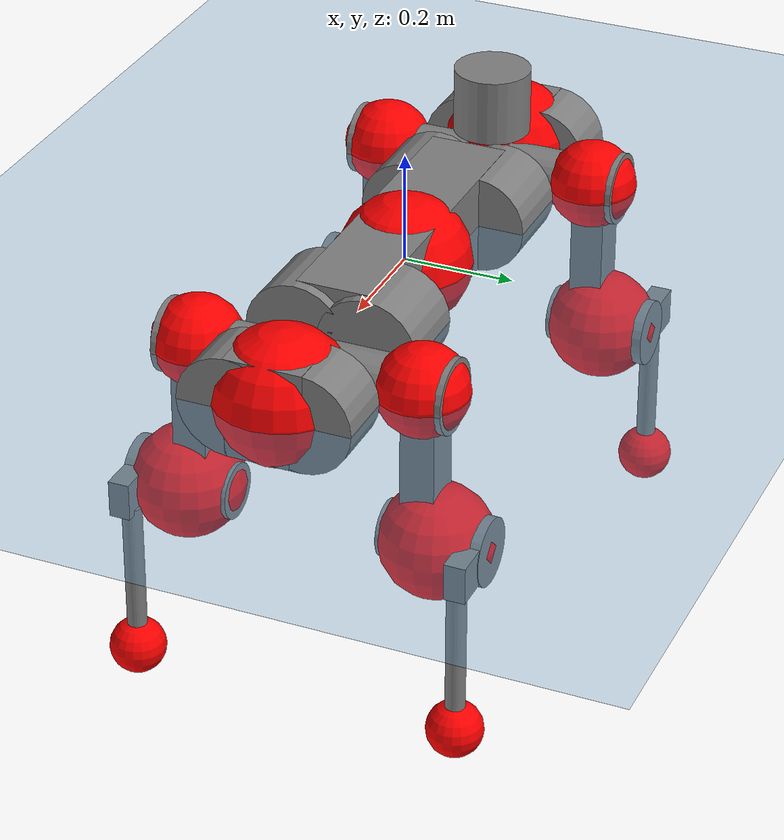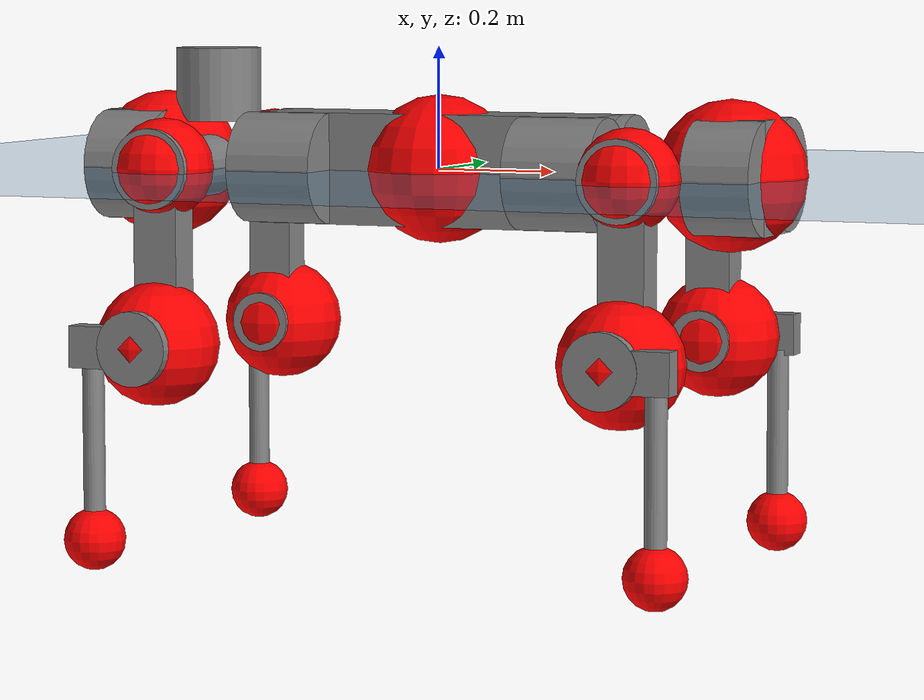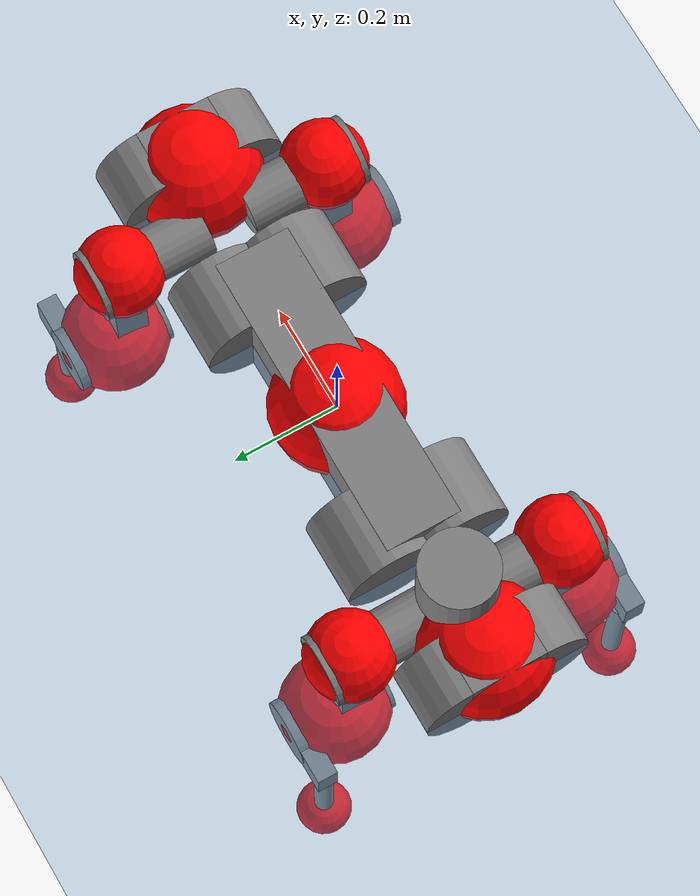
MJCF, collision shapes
<mujoco model="anymal_c">
  <compiler angle="radian" assetdir="assets" balanceinertia="true" inertiafromgeom="false"/>

  <option timestep="0.005" density="1.2" viscosity="2e-05"/>

  <size nkey="1"/>

  <visual>
    <quality shadowsize="8192"/>
    <map shadowclip="0.5"/>
  </visual>

  <default>
    <default class="/">
      <material specular="0" shininess="0.25"/>
      <geom contype="0" conaffinity="0" group="1" solref="-1000 -80"/>
      <site size="0.01 0.005 0.005" group="5"/>
      <general forcelimited="true" forcerange="-80 80" biastype="affine" gainprm="80" biasprm="0 -80 -2"/>
      <default class="anymal_c">
        <joint armature="0.01" damping="0.01" frictionloss="0.1"/>
        <default class="visual">
          <geom type="mesh" group="2"/>
          <default class="visual_zflip"/>
        </default>
        <default class="collision">
          <geom type="cylinder" group="3"/>
          <default class="foot">
            <geom size="0.03 0 0" type="sphere" condim="6" priority="1" friction="0.8 0.02 0.01" solimp="0.015 1 0.03"/>
          </default>
        </default>
      </default>
      <default class="reward_collision_sphere">
        <geom group="5" rgba="1 0 0 1"/>
      </default>
    </default>
  </default>

  <asset>
    <texture type="skybox" colorspace="auto" name="//unnamed_texture_0" builtin="gradient" rgb1="0.95 0.95 0.95" rgb2="0.95 0.95 0.95" width="100" height="600"/>
    <texture type="2d" colorspace="auto" name="texplane" builtin="checker" rgb1="0.345 0.575 0.748" rgb2="0.345 0.575 0.748" markrgb="1 1 1" width="512" height="512"/>
    <texture type="2d" colorspace="linear" name="base" file="base.png"/>
    <texture type="2d" colorspace="linear" name="top_shell" file="top_shell.png"/>
    <texture type="2d" colorspace="linear" name="bottom_shell" file="bottom_shell.png"/>
    <texture type="2d" colorspace="linear" name="remote" file="remote.png"/>
    <texture type="2d" colorspace="linear" name="hatch" file="hatch.png"/>
    <texture type="2d" colorspace="linear" name="handle" file="handle.png"/>
    <texture type="2d" colorspace="linear" name="face" file="face.png"/>
    <texture type="2d" colorspace="linear" name="battery" file="battery.png"/>
    <texture type="2d" colorspace="linear" name="lidar_cage" file="lidar_cage.png"/>
    <texture type="2d" colorspace="linear" name="depth_camera" file="depth_camera.png"/>
    <texture type="2d" colorspace="linear" name="wide_angle_camera" file="wide_angle_camera.png"/>
    <texture type="2d" colorspace="linear" name="lidar" file="lidar.png"/>
    <texture type="2d" colorspace="linear" name="drive" file="drive.png"/>
    <texture type="2d" colorspace="linear" name="hip_l" file="hip_l.png"/>
    <texture type="2d" colorspace="linear" name="shank_l" file="shank_l.png"/>
    <texture type="2d" colorspace="linear" name="foot" file="foot.png"/>
    <texture type="2d" colorspace="linear" name="thigh" file="thigh.png"/>
    <texture type="2d" colorspace="linear" name="shank_r" file="shank_r.png"/>
    <texture type="2d" colorspace="linear" name="hip_r" file="hip_r.png"/>
    <material name="MatPlane" class="/" texture="texplane" texuniform="true" texrepeat="2 2" specular="0.9" shininess="0.5"/>
    <material name="black_plastic" class="/" rgba="0.007 0.007 0.007 1"/>
    <material name="green" class="/" rgba="0.052 0.178 0.033 1"/>
    <material name="red" class="/" rgba="0.178 0.006 0.005 1"/>
    <material name="yellow" class="/" rgba="0.178 0.119 0.006 1"/>
    <material name="lwl" class="/" rgba="0.8 0.8 0.8 1"/>
    <material name="base" class="/" texture="base"/>
    <material name="top_shell" class="/" texture="top_shell"/>
    <material name="bottom_shell" class="/" texture="bottom_shell"/>
    <material name="hip_l" class="/" texture="hip_l"/>
    <material name="thigh" class="/" texture="thigh"/>
    <material name="shank_l" class="/" texture="shank_l"/>
    <material name="foot" class="/" texture="foot"/>
    <material name="hip_r" class="/" texture="hip_r"/>
    <material name="shank" class="/" texture="shank_r"/>
    <material name="hatch" class="/" texture="hatch"/>
    <material name="remote" class="/" texture="remote"/>
    <material name="handle" class="/" texture="handle"/>
    <material name="face" class="/" texture="face"/>
    <material name="depth_camera" class="/" texture="depth_camera"/>
    <material name="wide_angle_camera" class="/" texture="wide_angle_camera"/>
    <material name="battery" class="/" texture="battery"/>
    <material name="lidar_cage" class="/" texture="lidar_cage"/>
    <material name="lidar" class="/" texture="lidar"/>
    <material name="drive" class="/" texture="drive"/>
    <mesh name="base_0" class="/" file="base_0.obj"/>
    <mesh name="base_1" class="/" file="base_1.obj"/>
    <mesh name="base_2" class="/" file="base_2.obj"/>
    <mesh name="base_3" class="/" file="base_3.obj"/>
    <mesh name="base_4" class="/" file="base_4.obj"/>
    <mesh name="base_5" class="/" file="base_5.obj"/>
    <mesh name="top_shell" class="/" file="top_shell.obj"/>
    <mesh name="bottom_shell" class="/" file="bottom_shell.obj"/>
    <mesh name="remote" class="/" file="remote.obj"/>
    <mesh name="handle" class="/" file="handle.obj"/>
    <mesh name="face" class="/" file="face.obj"/>
    <mesh name="wide_angle_camera" class="/" file="wide_angle_camera.obj"/>
    <mesh name="depth_camera" class="/" file="depth_camera.obj"/>
    <mesh name="battery" class="/" file="battery.obj"/>
    <mesh name="lidar_cage" class="/" file="lidar_cage.obj"/>
    <mesh name="lidar" class="/" file="lidar.obj"/>
    <mesh name="drive" class="/" file="drive.obj"/>
    <mesh name="hip_l" class="/" file="hip_l.obj"/>
    <mesh name="thigh" class="/" file="thigh.obj"/>
    <mesh name="shank_l" class="/" file="shank_l.obj"/>
    <mesh name="foot" class="/" file="foot.obj"/>
    <mesh name="hip_r" class="/" file="hip_r.obj"/>
    <mesh name="hatch" class="/" file="hatch.obj"/>
    <mesh name="shank_r" class="/" file="shank_r.obj"/>
  </asset>

  <worldbody>
    <geom name="floor" class="/" size="100 100 0.125" type="plane" group="0" material="MatPlane"/>
    <light name="toplight_shadow" class="/" pos="0 0 5" dir="0.0990148 0.0990148 -0.990148" type="directional" ambient="0.04 0.04 0.04" diffuse="0.55 0.55 0.55" specular="0.12 0.12 0.12"/>
    <light name="toplight_fill" class="/" pos="0 0 5" dir="0.0990148 0.0990148 -0.990148" type="directional" castshadow="false" ambient="0.04 0.04 0.04" diffuse="0.3 0.3 0.3" specular="0.08 0.08 0.08"/>
    <body name="trunk" childclass="anymal_c" pos="0.00236787 -0.000490077 0.000652052" quat="0.999999 -0.000916827 -0.000466181 -2.03046e-05">
      <inertial pos="0.000295588 -0.000826696 0.0498532" quat="0.500457 0.499245 0.500207 0.50009" mass="19.0243" diaginertia="1.05073 0.430836 0.209071"/>
      <joint name="//unnamed_joint_0" type="free" armature="0" damping="0" frictionloss="0"/>
      <geom name="//unnamed_geom_1" class="visual" material="green" mesh="base_0"/>
      <geom name="//unnamed_geom_2" class="visual" material="yellow" mesh="base_1"/>
      <geom name="//unnamed_geom_3" class="visual" material="red" mesh="base_2"/>
      <geom name="//unnamed_geom_4" class="visual" material="black_plastic" mesh="base_3"/>
      <geom name="//unnamed_geom_5" class="visual" material="lwl" mesh="base_4"/>
      <geom name="//unnamed_geom_6" class="visual" material="base" mesh="base_5"/>
      <geom name="trunk_1" class="collision" size="0.293168 0.0707648 0.0909833" type="box"/>
      <geom name="trunk_2" class="collision" size="0.0909833 0.0732921" pos="0.240593 0.0651126 0" quat="0.707107 0 0.707107 0"/>
      <geom name="trunk_3" class="collision" size="0.0909833 0.0732921" pos="-0.240593 0.0651126 0" quat="0.707107 0 0.707107 0"/>
      <geom name="trunk_4" class="collision" size="0.0909833 0.0732921" pos="0.240593 -0.0651126 0" quat="0.707107 0 0.707107 0"/>
      <geom name="trunk_5" class="collision" size="0.0909833 0.0732921" pos="-0.240593 -0.0651126 0" quat="0.707107 0 0.707107 0"/>
      <geom name="//unnamed_geom_12" class="visual" material="top_shell" mesh="top_shell"/>
      <geom name="//unnamed_geom_13" class="visual" material="bottom_shell" mesh="bottom_shell"/>
      <geom name="//unnamed_geom_14" class="visual" material="remote" mesh="remote"/>
      <geom name="//unnamed_geom_15" class="visual" material="handle" mesh="handle"/>
      <geom name="//unnamed_geom_16" class="visual" pos="0.458509 0 0" quat="1 0 0 0" material="face" mesh="face"/>
      <geom name="trunk_6" class="collision" size="0.0556009 0.0707648 0.0909833" pos="0.519349 0 0" type="box"/>
      <geom name="//unnamed_geom_18" class="collision" size="0.0909833 0.0556009" pos="0.519349 0.0651126 0" quat="0.707107 0 0.707107 0"/>
      <geom name="//unnamed_geom_19" class="collision" size="0.0909833 0.0556009" pos="0.519349 -0.0651126 0" quat="0.707107 0 0.707107 0"/>
      <geom name="//unnamed_geom_20" class="visual" pos="0.510661 0 -0.0282613" quat="0.965926 0 0.258819 0" material="depth_camera" mesh="depth_camera"/>
      <geom name="//unnamed_geom_21" class="visual" pos="0.567468 0 0.0149164" material="wide_angle_camera" mesh="wide_angle_camera"/>
      <geom name="//unnamed_geom_22" class="visual_zflip" pos="-0.458509 0 0" quat="0 0 0 1" material="face" mesh="face"/>
      <geom name="trunk_7" class="collision" size="0.0556009 0.0707648 0.0909833" pos="-0.519349 0 0" quat="0 0 0 1" type="box"/>
      <geom name="//unnamed_geom_24" class="collision" size="0.0909833 0.0556009" pos="-0.519349 -0.0651126 0" quat="0 -0.707107 0 0.707107"/>
      <geom name="//unnamed_geom_25" class="collision" size="0.0909833 0.0556009" pos="-0.519349 0.0651126 0" quat="0 -0.707107 0 0.707107"/>
      <geom name="//unnamed_geom_26" class="visual" pos="-0.510661 0 -0.0282613" quat="0 -0.258819 0 0.965926" material="depth_camera" mesh="depth_camera"/>
      <geom name="//unnamed_geom_27" class="visual_zflip" pos="-0.567468 0 0.0149164" quat="0 0 0 1" material="wide_angle_camera" mesh="wide_angle_camera"/>
      <geom name="//unnamed_geom_28" class="visual" material="battery" mesh="battery"/>
      <geom name="//unnamed_geom_29" class="visual" pos="0 0.0688076 0.0297801" quat="0.683013 -0.183013 0.183013 0.683013" material="depth_camera" mesh="depth_camera"/>
      <geom name="//unnamed_geom_30" class="visual" pos="0 -0.0688076 0.0297801" quat="0.683013 0.183013 0.183013 -0.683013" material="depth_camera" mesh="depth_camera"/>
      <geom name="//unnamed_geom_31" class="visual" pos="-0.402648 0 0.0732369" quat="1 0 0 0" material="lidar_cage" mesh="lidar_cage"/>
      <geom name="trunk_8" class="collision" size="0.0707648 0.0606555" pos="-0.402648 0 0.133022"/>
      <geom name="//unnamed_geom_33" class="visual" pos="-0.402648 -6.91434e-05 0.141691" quat="0.707107 0 0 -0.707107" material="lidar" mesh="lidar"/>
      <geom name="//unnamed_geom_34" class="visual" pos="0.331742 0.0967623 -1.14264e-09" quat="0.258819 0.965926 0 0" material="drive" mesh="drive"/>
      <geom name="//unnamed_geom_35" class="visual" pos="0.331742 -0.0967623 1.14264e-09" quat="0.258819 -0.965926 0 0" material="drive" mesh="drive"/>
      <geom name="//unnamed_geom_36" class="visual" pos="-0.331742 0.0967623 1.14264e-09" quat="0 0 0.965926 -0.258819" material="drive" mesh="drive"/>
      <geom name="//unnamed_geom_37" class="visual" pos="-0.331742 -0.0967623 -1.14264e-09" quat="0 0 -0.965926 -0.258819" material="drive" mesh="drive"/>
      <geom name="//unnamed_geom_38" class="visual" pos="0.128316 0 0.0727387" quat="1 0 0 0" material="hatch" mesh="hatch"/>
      <geom name="//unnamed_geom_39" class="reward_collision_sphere" size="0.121311"/>
      <geom name="//unnamed_geom_40" class="reward_collision_sphere" size="0.121311" pos="0.497779 0 0"/>
      <geom name="//unnamed_geom_41" class="reward_collision_sphere" size="0.121311" pos="-0.497779 0 0"/>
      <site name="imu" pos="0.272512 0.00644721 0.055741" size="0.0101093"/>
      <camera name="track" pos="0 -1.86036 0" quat="0.707107 0.707107 0 0" mode="trackcom"/>
      <camera name="ego_camera" pos="0.497779 0 -0.0398568" quat="-0.5 -0.5 0.5 0.5"/>
      <body name="LF_HIP" pos="0.332077 0.0976399 -0.000112597" quat="0.258636 0.965975 0.000210034 -0.000339623">
        <inertial pos="0.0620488 -0.0147156 -0.00840457" quat="-0.127997 0.70897 -0.137758 0.679707" mass="2.87718" diaginertia="0.00992376 0.00338476 0.00322597"/>
        <joint name="LF_HAA" pos="0 0 0" axis="0.9999 -0.013981 -0.00218532" range="-0.673501 0.482328" armature="0.00998339" damping="0.00743154" frictionloss="0.101956"/>
        <geom name="//unnamed_geom_42" class="visual" pos="0 -6.72166e-05 1.10403e-05" quat="0.258819 -0.965926 0 0" material="hip_l" mesh="hip_l"/>
        <geom name="//unnamed_geom_43" class="visual" pos="0.0662599 -0.0779942 -0.0455199" quat="0.183013 -0.683013 0.683013 0.183013" material="drive" mesh="drive"/>
        <geom name="//unnamed_geom_44" class="collision" size="0.0505463 0.0707648" pos="0.0662599 -0.0111248 -0.00688028" quat="-0.353553 -0.612372 0.612372 -0.353553"/>
        <body name="LF_THIGH" pos="0.0661268 -0.0672153 -0.0423308" quat="0.182467 -0.683271 0.682787 0.183435">
          <inertial pos="0.0351802 -0.00018254 -0.246793" quat="0.993164 -0.0051705 -0.0806762 0.0842046" mass="3.11932" diaginertia="0.049193 0.0207136 0.0041871"/>
          <joint name="LF_HFE" pos="0 0 0" axis="0.999994 0.00342877 0.000549264" range="-3.16006 3.13619" armature="0.0105194" damping="0.00716281" frictionloss="0.106312"/>
          <geom name="//unnamed_geom_45" class="visual" pos="0.00350159 5.51769e-06 0" quat="0.707107 0 0 -0.707107" material="thigh" mesh="thigh"/>
          <geom name="//unnamed_geom_46" class="collision" size="0.0657101 0.040437" pos="0.044247 0 0" quat="0.5 0.5 -0.5 -0.5"/>
          <geom name="//unnamed_geom_47" class="collision" size="0.0379097 0.0303278 0.142858" pos="0.0331852 0 -0.140808" quat="0.707107 0 0 -0.707107" type="box"/>
          <geom name="//unnamed_geom_48" class="visual" pos="0.110949 0 -0.28398" quat="1 0 0 0" material="drive" mesh="drive"/>
          <geom name="//unnamed_geom_49" class="collision" size="0.0505463 0.0707648" pos="0.0335171 0 -0.28398" quat="0.707107 0 0.707107 0"/>
          <geom name="//unnamed_geom_50" class="reward_collision_sphere" size="0.080874" pos="0.0276544 0 0"/>
          <body name="LF_SHANK" pos="0.111074 -0.00238747 -0.283766" quat="1 -0.000167806 9.23946e-05 4.6868e-06">
            <inertial pos="0.00461892 -0.0569048 -0.0798811" quat="0.992828 -0.116641 -0.0058041 -0.0255838" mass="0.607555" diaginertia="0.0173403 0.00665309 0.00111869"/>
            <joint name="LF_KFE" pos="0 0 0" axis="0.999989 -0.000454504 0.00460905" range="-3.18044 3.14595" armature="0.00991826" damping="0.000604077" frictionloss="0.0991268"/>
            <geom name="//unnamed_geom_51" class="visual" pos="0.00114179 0.0060881 0" quat="0.707107 0 0 -0.707107" material="shank_l" mesh="shank_l"/>
            <geom name="LF_kfe_act" class="collision" size="0.0606555 0.0202185" pos="0.0221235 0 0" quat="0.5 0.5 -0.5 -0.5"/>
            <geom name="//unnamed_geom_53" class="collision" size="0.0581272 0.0341187 0.0192076" pos="0.0221235 -0.0534844 0" quat="0.5 0.5 -0.5 -0.5" type="box"/>
            <geom name="//unnamed_geom_54" class="visual" pos="0.0144353 -0.0798474 -0.33676" quat="0.382683 0 0 -0.92388" material="foot" mesh="foot"/>
            <geom name="LF_calf" class="collision" size="0.0176912 0.142795" pos="0.0144356 -0.0818094 -0.16838" quat="0.707107 0 0 -0.707107"/>
            <geom name="LF_foot" class="foot" size="0.0335308" pos="0.0144356 -0.0818094 -0.314341" quat="0.707107 0 0 -0.707107"/>
            <geom name="//unnamed_geom_57" class="reward_collision_sphere" size="0.101093" pos="-0.0553087 0 0"/>
            <geom name="//unnamed_geom_58" class="reward_collision_sphere" size="0.0505463" pos="0.0144356 -0.0818094 -0.314341"/>
            <site name="LF_foot" class="foot" pos="0.0144356 -0.0818094 -0.314341" quat="0.707107 0 0 -0.707107" size="0.0101093"/>
          </body>
        </body>
      </body>
      <body name="RF_HIP" pos="0.332198 -0.0971195 -0.0018585" quat="0.25868 -0.965963 -0.000534346 -0.000483598">
        <inertial pos="0.0624306 0.0129726 -0.00855021" quat="0.130176 0.675535 0.129581 0.714084" mass="2.8501" diaginertia="0.00960052 0.00343498 0.00322412"/>
        <joint name="RF_HAA" pos="0 0 0" axis="0.999994 0.00348603 0.000820846" range="-0.513235 0.719069" armature="0.00965999" damping="0.0135494" frictionloss="0.0930365"/>
        <geom name="//unnamed_geom_59" class="visual" pos="0 6.7216e-05 1.10402e-05" quat="0.258819 0.965926 0 0" material="hip_r" mesh="hip_r"/>
        <geom name="//unnamed_geom_60" class="visual" pos="0.0662599 0.0779942 -0.0455199" quat="0.183013 0.683013 0.683013 -0.183013" material="drive" mesh="drive"/>
        <geom name="//unnamed_geom_61" class="collision" size="0.0505463 0.0707648" pos="0.0662599 0.0111248 -0.00688028" quat="-0.353553 0.612372 0.612372 0.353553"/>
        <body name="RF_THIGH" pos="0.0667064 0.064897 -0.042618" quat="0.183077 0.683091 0.682959 -0.182857">
          <inertial pos="0.0340024 -0.00116335 -0.245132" quat="0.992889 -0.00533711 -0.0788285 0.089048" mass="3.20267" diaginertia="0.0501194 0.0212332 0.0042171"/>
          <joint name="RF_HFE" pos="0 0 0" axis="1 8.50501e-06 0.000445524" range="-3.14682 3.16687" armature="0.0101047" damping="0.0124039" frictionloss="0.0971117"/>
          <geom name="//unnamed_geom_62" class="visual" pos="0.00350159 5.51769e-06 0" quat="0.707107 0 0 -0.707107" material="thigh" mesh="thigh"/>
          <geom name="//unnamed_geom_63" class="collision" size="0.0657101 0.040437" pos="0.044247 0 0" quat="0.5 0.5 0.5 0.5"/>
          <geom name="//unnamed_geom_64" class="collision" size="0.0379097 0.0303278 0.142858" pos="0.0331852 0 -0.140808" quat="0.707107 0 0 0.707107" type="box"/>
          <geom name="//unnamed_geom_65" class="visual" pos="0.110949 0 -0.28398" quat="1 0 0 0" material="drive" mesh="drive"/>
          <geom name="//unnamed_geom_66" class="collision" size="0.0505463 0.0707648" pos="0.0335171 0 -0.28398" quat="0.707107 0 0.707107 0"/>
          <geom name="//unnamed_geom_67" class="reward_collision_sphere" size="0.080874" pos="0.0276544 0 0"/>
          <body name="RF_SHANK" pos="0.111001 -0.00103068 -0.283013" quat="1 1.42154e-05 -1.4346e-05 -8.71791e-05">
            <inertial pos="0.0062217 0.0574371 -0.0805638" quat="0.992537 0.120091 0.00557119 0.0204084" mass="0.607023" diaginertia="0.0168818 0.0064388 0.00108898"/>
            <joint name="RF_KFE" pos="0 0 0" axis="0.999979 0.00225903 0.00600685" range="-3.12416 3.15008" armature="0.0106081" damping="0.0139168" frictionloss="0.105795"/>
            <geom name="//unnamed_geom_68" class="visual" pos="0.00114179 -0.00608809 0" quat="0.707107 0 0 0.707107" material="shank" mesh="shank_r"/>
            <geom name="RF_kfe_act" class="collision" size="0.0606555 0.0202185" pos="0.0221235 0 0" quat="0.5 0.5 0.5 0.5"/>
            <geom name="//unnamed_geom_70" class="collision" size="0.0581272 0.0341187 0.0192076" pos="0.0221235 0.0534844 0" quat="0.5 0.5 0.5 0.5" type="box"/>
            <geom name="//unnamed_geom_71" class="visual" pos="0.0144359 0.0798474 -0.33676" quat="0.382683 0 0 0.92388" material="foot" mesh="foot"/>
            <geom name="RF_calf" class="collision" size="0.0176912 0.142795" pos="0.0144356 0.0818094 -0.16838" quat="0.707107 0 0 0.707107"/>
            <geom name="RF_foot" class="foot" size="0.0289306" pos="0.0144356 0.0818094 -0.314341" quat="0.707107 0 0 0.707107"/>
            <geom name="//unnamed_geom_74" class="reward_collision_sphere" size="0.101093" pos="-0.0553087 0 0"/>
            <geom name="//unnamed_geom_75" class="reward_collision_sphere" size="0.0505463" pos="0.0144356 0.0818094 -0.314341"/>
            <site name="RF_foot" class="foot" pos="0.0144356 0.0818094 -0.314341" quat="0.707107 0 0 0.707107" size="0.0101093"/>
          </body>
        </body>
      </body>
      <body name="LH_HIP" pos="-0.331082 0.0971599 0.000178954" quat="3.38021e-05 0.000220661 0.965924 -0.258825">
        <inertial pos="0.0618373 0.0161395 -0.00928882" quat="0.129939 0.684618 0.135351 0.70434" mass="2.93149" diaginertia="0.00971205 0.0034141 0.00329143"/>
        <joint name="LH_HAA" pos="0 0 0" axis="0.999997 0.00236401 0.00102022" range="-0.497204 0.723708" armature="0.00942765" damping="0.0152005" frictionloss="0.110521"/>
        <geom name="//unnamed_geom_76" class="visual" pos="0 6.7216e-05 1.10402e-05" quat="-0.258819 -0.965926 0 0" material="hip_r" mesh="hip_r"/>
        <geom name="//unnamed_geom_77" class="visual" pos="0.0662599 0.0779942 -0.0455199" quat="0.183013 0.683013 0.683013 -0.183013" material="drive" mesh="drive"/>
        <geom name="//unnamed_geom_78" class="collision" size="0.0505463 0.0707648" pos="0.0662599 0.0111248 -0.00688028" quat="-0.353553 0.612372 0.612372 0.353553"/>
        <body name="LH_THIGH" pos="0.0654403 0.0655412 -0.040942" quat="0.183122 0.683027 0.683 -0.182898">
          <inertial pos="0.0341177 -3.98746e-05 -0.244699" quat="0.992372 -0.00281979 -0.0851791 0.0890727" mass="3.22354" diaginertia="0.0496549 0.0205777 0.00408491"/>
          <joint name="LH_HFE" pos="0 0 0" axis="1 0.000216509 -0.000790472" range="-3.1352 3.15054" armature="0.0105958" damping="0.00952202" frictionloss="0.101503"/>
          <geom name="//unnamed_geom_79" class="visual" pos="0.00350159 5.51769e-06 0" quat="0.707107 0 0 -0.707107" material="thigh" mesh="thigh"/>
          <geom name="//unnamed_geom_80" class="collision" size="0.0657101 0.040437" pos="0.044247 0 0" quat="0.5 0.5 -0.5 -0.5"/>
          <geom name="//unnamed_geom_81" class="collision" size="0.0379097 0.0303278 0.142858" pos="0.0331852 0 -0.140808" quat="0.707107 0 0 -0.707107" type="box"/>
          <geom name="//unnamed_geom_82" class="visual" pos="0.110949 0 -0.28398" quat="1 0 0 0" material="drive" mesh="drive"/>
          <geom name="//unnamed_geom_83" class="collision" size="0.0505463 0.0707648" pos="0.0335171 0 -0.28398" quat="0.707107 0 0.707107 0"/>
          <geom name="//unnamed_geom_84" class="reward_collision_sphere" size="0.080874" pos="0.0276544 0 0"/>
          <body name="LH_SHANK" pos="0.111129 -0.00074909 -0.28577" quat="1 0.000128268 -6.26858e-05 5.87485e-05">
            <inertial pos="0.00709765 0.059147 -0.0798327" quat="0.993067 0.114503 -0.000850869 0.0265846" mass="0.599693" diaginertia="0.0166708 0.00637939 0.00105375"/>
            <joint name="LH_KFE" pos="0 0 0" axis="0.999999 0.000332976 0.00142099" range="-3.14476 3.12529" armature="0.0100335" damping="0.00623082" frictionloss="0.112406"/>
            <geom name="//unnamed_geom_85" class="visual" pos="0.00114179 -0.00608809 0" quat="-0.707107 0 0 -0.707107" material="shank" mesh="shank_r"/>
            <geom name="LH_kfe_act" class="collision" size="0.0606555 0.0202185" pos="0.0221235 0 0" quat="0.5 0.5 -0.5 -0.5"/>
            <geom name="//unnamed_geom_87" class="collision" size="0.0581272 0.0341187 0.0192076" pos="0.0221235 0.0534844 0" quat="0.5 0.5 -0.5 -0.5" type="box"/>
            <geom name="//unnamed_geom_88" class="visual" pos="0.0144359 0.0798474 -0.33676" quat="-0.382683 0 0 -0.92388" material="foot" mesh="foot"/>
            <geom name="LH_calf" class="collision" size="0.0176912 0.142795" pos="0.0144356 0.0818094 -0.16838" quat="0.707107 0 0 -0.707107"/>
            <geom name="LH_foot" class="foot" size="0.0317277" pos="0.0144356 0.0818094 -0.314341" quat="0.707107 0 0 -0.707107"/>
            <geom name="//unnamed_geom_91" class="reward_collision_sphere" size="0.101093" pos="-0.0553087 0 0"/>
            <geom name="//unnamed_geom_92" class="reward_collision_sphere" size="0.0505463" pos="0.0144356 0.0818094 -0.314341"/>
            <site name="LH_foot" class="foot" pos="0.0144356 0.0818094 -0.314341" quat="0.707107 0 0 -0.707107" size="0.0101093"/>
          </body>
        </body>
      </body>
      <body name="RH_HIP" pos="-0.332658 -0.0968981 -0.000653166" quat="-0.000835036 -0.000689021 -0.966014 -0.258488">
        <inertial pos="0.0649393 -0.0134261 -0.0107523" quat="-0.125919 0.710689 -0.137523 0.678345" mass="2.88127" diaginertia="0.00976157 0.00343377 0.00321744"/>
        <joint name="RH_HAA" pos="0 0 0" axis="0.999917 0.00541326 -0.0116999" range="-0.743661 0.492544" armature="0.0104178" damping="0.00954229" frictionloss="0.0999245"/>
        <geom name="//unnamed_geom_93" class="visual" pos="0 -6.72166e-05 1.10403e-05" quat="-0.258819 0.965926 0 0" material="hip_l" mesh="hip_l"/>
        <geom name="//unnamed_geom_94" class="visual" pos="0.0662599 -0.0779942 -0.0455199" quat="-0.183013 0.683013 -0.683013 -0.183013" material="drive" mesh="drive"/>
        <geom name="//unnamed_geom_95" class="collision" size="0.0505463 0.0707648" pos="0.0662599 -0.0111248 -0.00688028" quat="0.353553 0.612372 -0.612372 0.353553"/>
        <body name="RH_THIGH" pos="0.0668494 -0.0678428 -0.0442088" quat="-0.183031 0.683021 -0.683045 -0.182844">
          <inertial pos="0.0338241 9.59798e-05 -0.244658" quat="0.993074 -0.00432304 -0.0805877 0.0853904" mass="3.10398" diaginertia="0.0500575 0.0208953 0.00411692"/>
          <joint name="RH_HFE" pos="0 0 0" axis="0.999999 -0.000818568 0.00128615" range="-3.14328 3.17909" armature="0.00984977" damping="0.00688564" frictionloss="0.0997495"/>
          <geom name="//unnamed_geom_96" class="visual" pos="0.00350159 5.51769e-06 0" quat="0.707107 0 0 -0.707107" material="thigh" mesh="thigh"/>
          <geom name="//unnamed_geom_97" class="collision" size="0.0657101 0.040437" pos="0.044247 0 0" quat="0.5 0.5 0.5 0.5"/>
          <geom name="//unnamed_geom_98" class="collision" size="0.0379097 0.0303278 0.142858" pos="0.0331852 0 -0.140808" quat="0.707107 0 0 0.707107" type="box"/>
          <geom name="//unnamed_geom_99" class="visual" pos="0.110949 0 -0.28398" quat="1 0 0 0" material="drive" mesh="drive"/>
          <geom name="//unnamed_geom_100" class="collision" size="0.0505463 0.0707648" pos="0.0335171 0 -0.28398" quat="0.707107 0 0.707107 0"/>
          <geom name="//unnamed_geom_101" class="reward_collision_sphere" size="0.080874" pos="0.0276544 0 0"/>
          <body name="RH_SHANK" pos="0.11069 0.000733815 -0.284245" quat="1 4.57075e-05 -1.7816e-05 -3.28009e-05">
            <inertial pos="0.00529809 -0.0566123 -0.0802276" quat="0.992929 -0.116225 -0.00137376 -0.0241175" mass="0.602704" diaginertia="0.0165868 0.00640231 0.00111619"/>
            <joint name="RH_KFE" pos="0 0 0" axis="0.999919 -0.0127224 -9.16692e-05" stiffness="0.00101715" range="-3.11466 3.14094" armature="0.0105752" damping="0.0168225" frictionloss="0.105467"/>
            <geom name="//unnamed_geom_102" class="visual" pos="0.00114179 0.0060881 0" quat="0.707107 0 0 -0.707107" material="shank_l" mesh="shank_l"/>
            <geom name="RH_kfe_act" class="collision" size="0.0606555 0.0202185" pos="0.0221235 0 0" quat="0.5 0.5 0.5 0.5"/>
            <geom name="//unnamed_geom_104" class="collision" size="0.0581272 0.0341187 0.0192076" pos="0.0221235 -0.0534844 0" quat="0.5 0.5 0.5 0.5" type="box"/>
            <geom name="//unnamed_geom_105" class="visual" pos="0.0144353 -0.0798474 -0.33676" quat="0.382683 0 0 -0.92388" material="foot" mesh="foot"/>
            <geom name="RH_calf" class="collision" size="0.0176912 0.142795" pos="0.0144356 -0.0818094 -0.16838" quat="0.707107 0 0 0.707107"/>
            <geom name="RH_foot" class="foot" size="0.0273517" pos="0.0144356 -0.0818094 -0.314341" quat="0.707107 0 0 0.707107"/>
            <geom name="//unnamed_geom_108" class="reward_collision_sphere" size="0.101093" pos="-0.0553087 0 0"/>
            <geom name="//unnamed_geom_109" class="reward_collision_sphere" size="0.0505463" pos="0.0144356 -0.0818094 -0.314341"/>
            <site name="RH_foot" class="foot" pos="0.0144356 -0.0818094 -0.314341" quat="0.707107 0 0 0.707107" size="0.0101093"/>
          </body>
        </body>
      </body>
    </body>
  </worldbody>

  <contact>
    <pair class="/" geom1="floor" geom2="LF_foot" name="//unnamed_contact_0"/>
    <pair class="/" geom1="floor" geom2="RF_foot" name="//unnamed_contact_1"/>
    <pair class="/" geom1="floor" geom2="LH_foot" name="//unnamed_contact_2"/>
    <pair class="/" geom1="floor" geom2="RH_foot" name="//unnamed_contact_3"/>
  </contact>

  <actuator>
    <general name="LF_HAA" class="/" joint="LF_HAA" forcerange="-81.21 81.21" gainprm="79.7237" biasprm="0 -79.7237 -1.95119"/>
    <general name="LF_HFE" class="/" joint="LF_HFE" forcerange="-82.1047 82.1047" gainprm="79.7237" biasprm="0 -79.7237 -1.95119"/>
    <general name="LF_KFE" class="/" joint="LF_KFE" forcerange="-79.7196 79.7196" gainprm="79.7237" biasprm="0 -79.7237 -1.95119"/>
    <general name="RF_HAA" class="/" joint="RF_HAA" forcerange="-82.2053 82.2053" gainprm="79.7237" biasprm="0 -79.7237 -1.95119"/>
    <general name="RF_HFE" class="/" joint="RF_HFE" forcerange="-81.9945 81.9945" gainprm="79.7237" biasprm="0 -79.7237 -1.95119"/>
    <general name="RF_KFE" class="/" joint="RF_KFE" forcerange="-80.3753 80.3753" gainprm="79.7237" biasprm="0 -79.7237 -1.95119"/>
    <general name="LH_HAA" class="/" joint="LH_HAA" forcerange="-88.1929 88.1929" gainprm="79.7237" biasprm="0 -79.7237 -1.95119"/>
    <general name="LH_HFE" class="/" joint="LH_HFE" forcerange="-83.4068 83.4068" gainprm="79.7237" biasprm="0 -79.7237 -1.95119"/>
    <general name="LH_KFE" class="/" joint="LH_KFE" forcerange="-75.5702 75.5702" gainprm="79.7237" biasprm="0 -79.7237 -1.95119"/>
    <general name="RH_HAA" class="/" joint="RH_HAA" forcerange="-80.5026 80.5026" gainprm="79.7237" biasprm="0 -79.7237 -1.95119"/>
    <general name="RH_HFE" class="/" joint="RH_HFE" forcerange="-87.7664 87.7664" gainprm="79.7237" biasprm="0 -79.7237 -1.95119"/>
    <general name="RH_KFE" class="/" joint="RH_KFE" forcerange="-81.7534 81.7534" gainprm="79.7237" biasprm="0 -79.7237 -1.95119"/>
  </actuator>

  <sensor>
    <gyro site="imu" name="imu_angular_velocity"/>
    <velocimeter site="imu" name="imu_linear_velocity"/>
    <framelinvel objtype="site" objname="LF_foot" name="LF_foot_global_linear_velocity"/>
    <framelinvel objtype="site" objname="RF_foot" name="RF_foot_global_linear_velocity"/>
    <framelinvel objtype="site" objname="LH_foot" name="LH_foot_global_linear_velocity"/>
    <framelinvel objtype="site" objname="RH_foot" name="RH_foot_global_linear_velocity"/>
  </sensor>

  <keyframe>
    <key name="home" qpos="0 0 0.55 1 0 0 0 0 0.4 -0.8 0 -0.4 0.8 0 -0.4 0.8 0 0.4 -0.8"/>
  </keyframe>
</mujoco>
